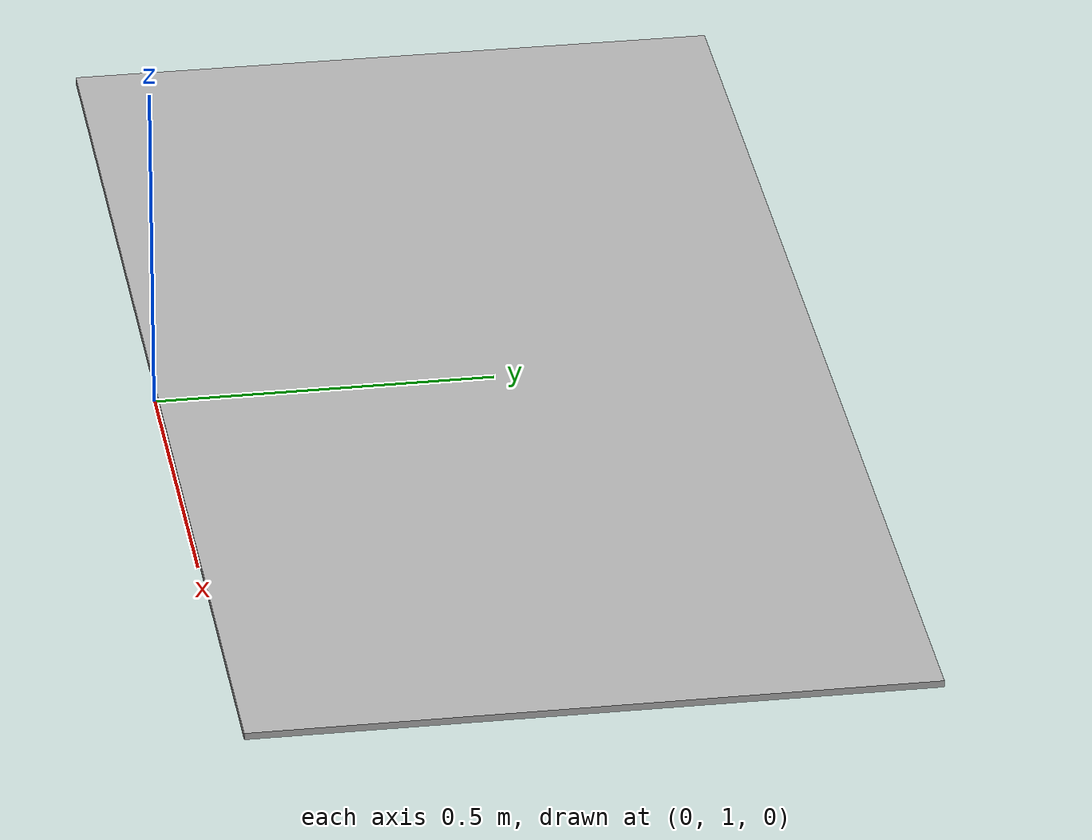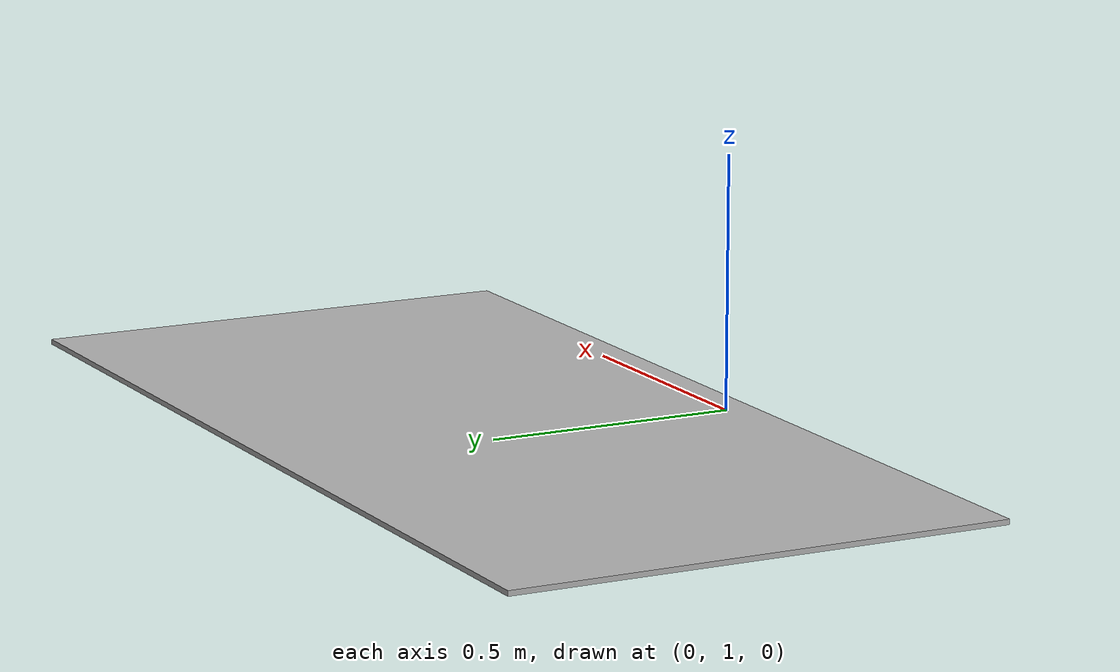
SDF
<?xml version='1.0'?>
<sdf version='1.6'>
  <model name='segment_straight_0.5v2'>
    <link name='link'>
      <pose frame=''>0.013032 1.48904 0.025 0 -0 0</pose>
      <inertial>
        <mass>4.9387</mass>
        <inertia>
          <ixx>0.394952</ixx>
          <ixy>0</ixy>
          <ixz>0</ixz>
          <iyy>1.67389</iyy>
          <iyz>0</iyz>
          <izz>2.06876</izz>
        </inertia>
        <pose frame=''>0 0 0 0 -0 0</pose>
      </inertial>
      <self_collide>0</self_collide>
      <kinematic>0</kinematic>
      <visual name='visual'>
        <pose frame=''>0 0 0 0 -0 0</pose>
        <geometry>
          <box>
            <size>2.0167 0.979566 0.01</size>
          </box>
        </geometry>
        <material>
          <lighting>1</lighting>
          <script>
            <uri>model://segment_straight/materials/scripts/segment_straight.material</uri>
            <name>SegmentStraight/Image</name>
          </script>
          <shader type='vertex'>
            <normal_map>__default__</normal_map>
          </shader>
          <ambient>0.3 0.3 0.3 1</ambient>
          <diffuse>0.7 0.7 0.7 1</diffuse>
          <specular>0.01 0.01 0.01 1</specular>
          <emissive>0 0 0 1</emissive>
        </material>
        <transparency>0</transparency>
        <cast_shadows>1</cast_shadows>
      </visual>
      <collision name='collision'>
        <laser_retro>0</laser_retro>
        <max_contacts>10</max_contacts>
        <pose frame=''>0 0 0 0 -0 0</pose>
        <geometry>
          <box>
            <size>2.0167 0.979566 0.01</size>
          </box>
        </geometry>
        <surface>
          <friction>
            <ode>
              <mu>1</mu>
              <mu2>1</mu2>
              <fdir1>0 0 0</fdir1>
              <slip1>0</slip1>
              <slip2>0</slip2>
            </ode>
            <torsional>
              <coefficient>1</coefficient>
              <patch_radius>0</patch_radius>
              <surface_radius>0</surface_radius>
              <use_patch_radius>1</use_patch_radius>
              <ode>
                <slip>0</slip>
              </ode>
            </torsional>
          </friction>
          <bounce>
            <restitution_coefficient>0</restitution_coefficient>
            <threshold>1e+06</threshold>
          </bounce>
          <contact>
            <collide_without_contact>0</collide_without_contact>
            <collide_without_contact_bitmask>1</collide_without_contact_bitmask>
            <collide_bitmask>1</collide_bitmask>
            <ode>
              <soft_cfm>0</soft_cfm>
              <soft_erp>0.2</soft_erp>
              <kp>1e+13</kp>
              <kd>1</kd>
              <max_vel>0.01</max_vel>
              <min_depth>0</min_depth>
            </ode>
            <bullet>
              <split_impulse>1</split_impulse>
              <split_impulse_penetration_threshold>-0.01</split_impulse_penetration_threshold>
              <soft_cfm>0</soft_cfm>
              <soft_erp>0.2</soft_erp>
              <kp>1e+13</kp>
              <kd>1</kd>
            </bullet>
          </contact>
        </surface>
      </collision>
    </link>
    <static>1</static>
    <allow_auto_disable>1</allow_auto_disable>
  </model>
</sdf>
